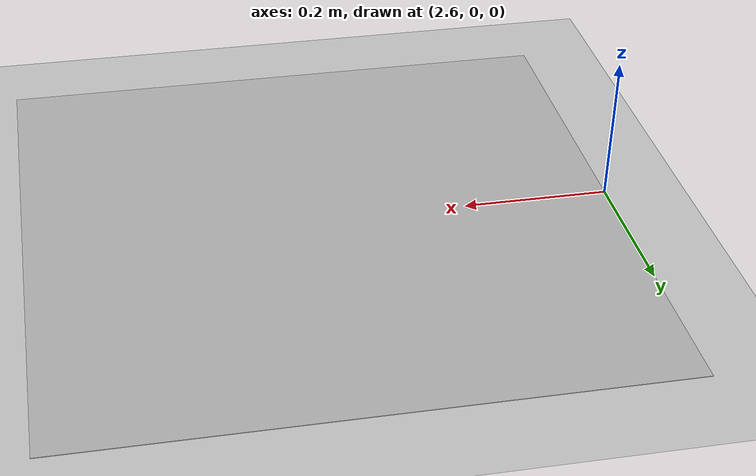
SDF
<?xml version="1.0" ?>
<sdf version="1.4">
  <world name="default">
    <include>
      <uri>model://ground_plane</uri>
    </include>
    <include>
      <uri>model://sun</uri>
    </include>
    <!-- Target -->
    <include>
          <static>false</static>
      <uri>model://landing_target</uri>
      <pose>3 0 0 0 0 0</pose>
    </include>
    <!-- MAV -->

    <!-- Only one ROS interface plugin is required per world, as any other plugin can connect a Gazebo
         topic to a ROS topic (or vise versa). -->
    <plugin name="ros_interface_plugin" filename="librotors_gazebo_ros_interface_plugin.so"/>

    <spherical_coordinates>
      <surface_model>EARTH_WGS84</surface_model>
      <latitude_deg>43.781697</latitude_deg>
      <longitude_deg>-79.466457</longitude_deg>
      <elevation>185.0</elevation>
      <heading_deg>0</heading_deg>
    </spherical_coordinates>
    <physics type='ode'>
      <ode>
        <solver>
          <type>quick</type>
          <iters>1000</iters>
          <sor>1.3</sor>
        </solver>
        <constraints>
          <cfm>0</cfm>
          <erp>0.2</erp>
          <contact_max_correcting_vel>100</contact_max_correcting_vel>
          <contact_surface_layer>0.001</contact_surface_layer>
        </constraints>
      </ode>
      <max_step_size>0.01</max_step_size>
      <real_time_factor>1</real_time_factor>
      <real_time_update_rate>100</real_time_update_rate>
      <gravity>0 0 -9.8</gravity>
    </physics>
  </world>
</sdf>

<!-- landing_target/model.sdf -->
<sdf version="1.0">
  <model name="landing_target">
    <link name='landing_target/base_link'>
      <pose>0 0 0 0 0 0</pose>
      <inertial>
        <mass>1.0</mass>
        <inertia>
          <ixx>1.0</ixx>
          <iyy>1.0</iyy>
          <izz>1.0</izz>
        </inertia>
        <pose>0 0 0 0 0 0</pose>
      </inertial>

      <visual name='visual'>
        <pose>0 0 0 0 0 0</pose>
        <geometry>
          <box>
            <size>0.8001 0.8001 0.001</size>
          </box>
        </geometry>
        <material>
          <script>
            <uri>model://landing_target/materials/scripts</uri>
            <uri>model://landing_target/materials/textures</uri>
            <name>Tags/CustomTag</name>
          </script>
        </material>
        <transparency>0</transparency>
      </visual>

      <collision name='collision'>
        <pose>0 0 0 0 0 0</pose>
        <geometry>
          <box>
            <size>0.8001 0.8001 0.001</size>
          </box>
        </geometry>
        <surface>
          <friction>
            <ode>
              <mu>0.0</mu>
              <mu2>0.0</mu2>
              <slip1>0.0</slip1>
              <slip2>0.0</slip2>
            </ode>
          </friction>
        </surface>
      </collision>
    </link>
    <plugin name="landing_target_plugin" filename="librotors_gazebo_landing_target_plugin.so"/>
  </model>
</sdf>
